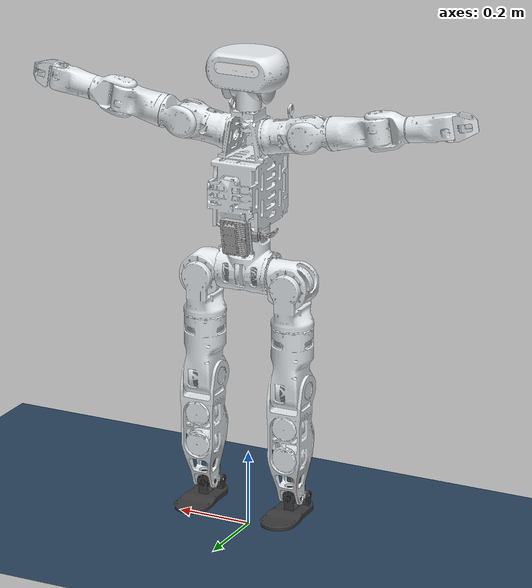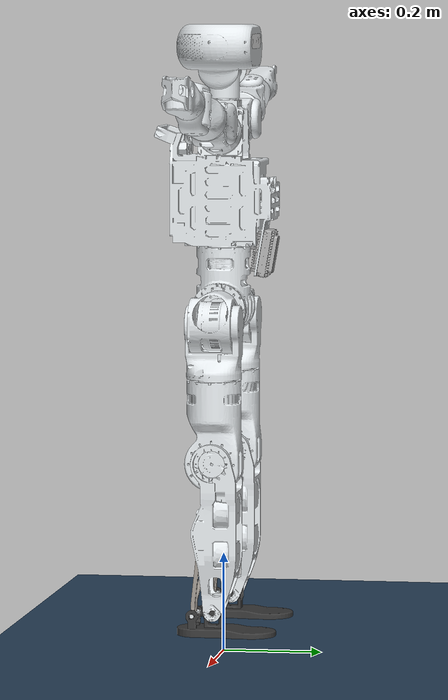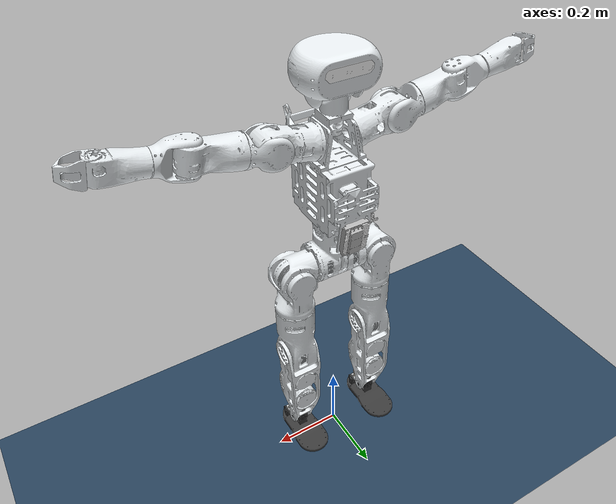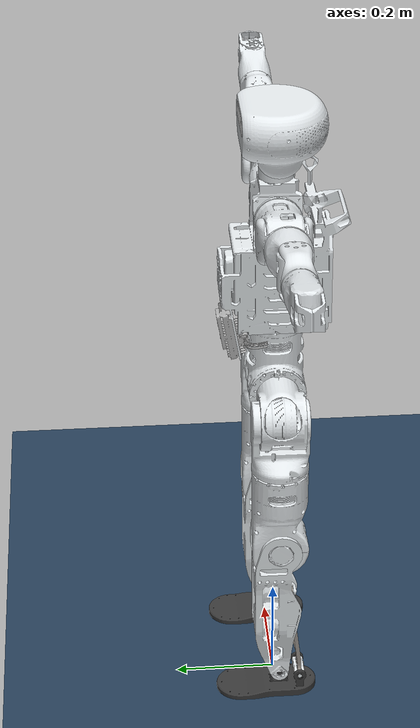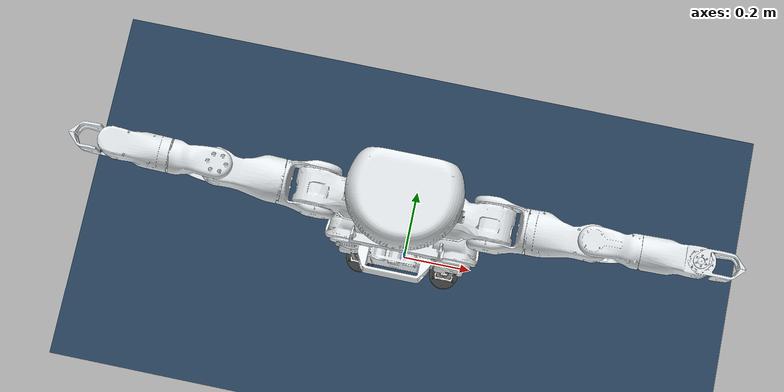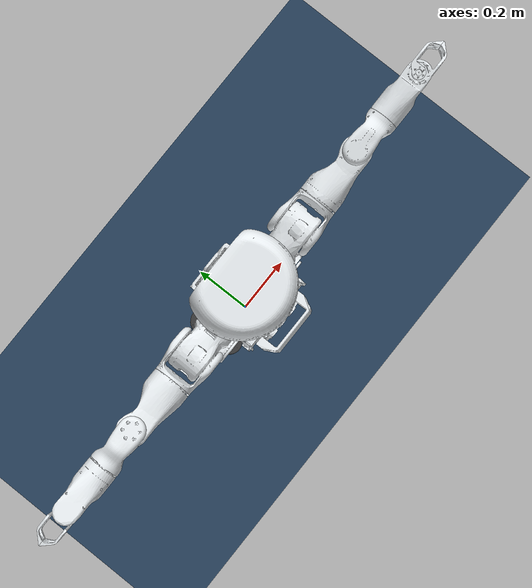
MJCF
<mujoco model="Khan_mini">
  <compiler angle="radian" meshdir="./meshes" />

  <asset>
    <mesh name="base_link" file="base_link.STL" />
    <mesh name="Left_hip_pitch_Link" file="Left_hip_pitch_Link.STL" />
    <mesh name="Left_hip_roll_Link" file="Left_hip_roll_Link.STL" />
    <mesh name="Left_hip_yaw_Link" file="Left_hip_yaw_Link.STL" />
    <mesh name="Left_knee_Link" file="Left_knee_Link.STL" />
    <mesh name="Left_ankle_pitch_Link" file="Left_ankle_pitch_Link.STL" />
    <mesh name="Left_ankle_roll_Link" file="Left_ankle_roll_Link.STL" />
    <mesh name="left_ankle_base_Link" file="left_ankle_base_Link.STL" />
    <mesh name="left_link1_down_Link" file="left_link1_down_Link.STL" />
    <mesh name="Left_link2_down_Link" file="Left_link2_down_Link.STL" />
    <mesh name="Left_drive1_Link" file="Left_drive1_Link.STL" />
    <mesh name="Left_link1_up_Link" file="Left_link1_up_Link.STL" />
    <mesh name="Left_drive2_Link" file="Left_drive2_Link.STL" />
    <mesh name="Left_link2_up_Link" file="Left_link2_up_Link.STL" />
    <mesh name="Right_hip_pitch_Link" file="Right_hip_pitch_Link.STL" />
    <mesh name="Right_hip_roll_Link" file="Right_hip_roll_Link.STL" />
    <mesh name="Right_hip_yaw_Link" file="Right_hip_yaw_Link.STL" />
    <mesh name="Right_knee_Link" file="Right_knee_Link.STL" />
    <mesh name="Right_ankle_pitch_Link" file="Right_ankle_pitch_Link.STL" />
    <mesh name="Right_ankle_roll_Link" file="Right_ankle_roll_Link.STL" />
    <mesh name="Right_ankle_base_Link" file="Right_ankle_base_Link.STL" />
    <mesh name="Right_link1_down_Link" file="Right_link1_down_Link.STL" />
    <mesh name="Right_link2_down_Link" file="Right_link2_down_Link.STL" />
    <mesh name="Right_drive1_Link" file="Right_drive1_Link.STL" />
    <mesh name="Right_link1_up_Link" file="Right_link1_up_Link.STL" />
    <mesh name="Right_drive2_Link" file="Right_drive2_Link.STL" />
    <mesh name="Right_link2_up_Link" file="Right_link2_up_Link.STL" />
    <mesh name="waist_yaw_Link" file="waist_yaw_Link.STL" />
    <mesh name="IMU_Link" file="IMU_Link.STL" />
    <mesh name="E1R_Link" file="E1R_Link.STL" />
    <mesh name="Left_shoulder_pitch_Link" file="Left_shoulder_pitch_Link.STL" />
    <mesh name="Left_shoulder_roll_Link" file="Left_shoulder_roll_Link.STL" />
    <mesh name="Left_shoulder_yaw_Link" file="Left_shoulder_yaw_Link.STL" />
    <mesh name="Left_elbow_Link" file="Left_elbow_Link.STL" />
    <mesh name="Left_wrist_roll_Link" file="Left_wrist_roll_Link.STL" />
    <mesh name="Left_wrist_yaw_Link" file="Left_wrist_yaw_Link.STL" />
    <mesh name="Right_shoulder_pitch_Link" file="Right_shoulder_pitch_Link.STL" />
    <mesh name="Right_shoulder_roll_Link" file="Right_shoulder_roll_Link.STL" />
    <mesh name="Right_shoulder_yaw_Link" file="Right_shoulder_yaw_Link.STL" />
    <mesh name="Right_elbow_Link" file="Right_elbow_Link.STL" />
    <mesh name="Right_wrist_roll_Link" file="Right_wrist_roll_Link.STL" />
    <mesh name="Right_wrist_yaw__Link" file="Right_wrist_yaw__Link.STL" />
    <mesh name="Neck_yaw_Link" file="Neck_yaw_Link.STL" />
    <mesh name="Neck_pitch_Link" file="Neck_pitch_Link.STL" />
    <mesh name="Camera_Link" file="Camera_Link.STL" />
  </asset>

  <default>
    <joint damping="0.01" armature="0.01" frictionloss="0.1" />
  </default>

  <worldbody>
    <site name="world" />
    <body name="base_link" pos="0 0 0.7" euler="0 0 1.57">
      <inertial pos="-4.221e-05 -1.5202e-05 0.03039" quat="0.706217 0.00357804 0.00350302 0.707978" mass="4.0179" diaginertia="0.00595011 0.00508393 0.00475947" />
      <joint name="base_to_world_joint" type="free" />
      <geom type="mesh" rgba="0.89804 0.91765 0.92941 1" contype="0" conaffinity="0" mesh="base_link" />
      <body name="Left_hip_pitch_Link" pos="0 0.12485 0">
        <inertial pos="0.0019439 -0.0030968 -0.023644" quat="0.969923 0.242989 -0.00988392 -0.0103728" mass="1.4636" diaginertia="0.00220231 0.00166132 0.00138447" />
        <joint name="Left_hip_pitch_joint" pos="0 0 0" axis="0 1 0" armature="0.03" range="-1.9198 1.2217" actuatorfrcrange="-120 120" />
        <geom type="mesh" rgba="0.89804 0.91765 0.92941 1" mesh="Left_hip_pitch_Link" />
        <body name="Left_hip_roll_Link" pos="0 0 -0.025">
          <inertial pos="0.0080102 4.5979e-06 -0.061622" quat="0.989628 -1.06913e-05 0.143652 -0.000118939" mass="0.61135" diaginertia="0.0014548 0.001306 0.000724982" />
          <joint name="Left_hip_roll_joint" pos="0 0 0" axis="1 0 0" armature="0.03" range="-0.5236 2.3562" actuatorfrcrange="-120 120" />
          <geom type="mesh" rgba="0.89804 0.91765 0.92941 1" mesh="Left_hip_roll_Link" />
          <body name="Left_hip_yaw_Link">
            <inertial pos="0.001015 -0.0008594 -0.21192" quat="0.696349 -0.0667912 -0.0169266 0.714388" mass="2.9008" diaginertia="0.00529103 0.00433145 0.00330872" />
            <joint name="Left_hip_yaw_joint" pos="0 0 0" axis="0 0 1" armature="0.03" range="-2.0071 3.5779" actuatorfrcrange="-120 120" />
            <geom type="mesh" rgba="0.89804 0.91765 0.92941 1" mesh="Left_hip_yaw_Link" />
            <body name="Left_knee_Link" pos="0 0 -0.27505">
              <inertial pos="0.014349 -0.00042715 -0.13961" quat="0.998274 0.0583238 0.00295361 -0.00622015" mass="3.0607" diaginertia="0.00897844 0.0079926 0.00218156" />
              <joint name="Left_knee_joint" pos="0 0 0" axis="0 1 0" armature="0.03" range="-0.349 2.2689" actuatorfrcrange="-120 120" />
              <geom type="mesh" rgba="0.89804 0.91765 0.92941 1" contype="0" conaffinity="0" mesh="Left_knee_Link" />
              <body name="Left_ankle_pitch_Link" pos="0 0 -0.3">
                <inertial pos="-1.0021e-07 4.6371e-09 0.0002973" quat="0.499994 0.499998 -0.500002 0.500006" mass="0.034237" diaginertia="7.1072e-06 6.0899e-06 2.0815e-06" />
                <joint name="Left_ankle_pitch_joint" pos="0 0 0" axis="0 -1 0" range="-0.5236 0.6108" actuatorfrcrange="-96 96" />
                <geom type="mesh" rgba="0.22353 0.22353 0.22353 1" contype="0" conaffinity="0" mesh="Left_ankle_pitch_Link" />
                <body name="Left_ankle_roll_Link">
                  <inertial pos="0.013731 3.6954e-11 -0.034295" quat="0 0.712239 0 0.701937" mass="0.48502" diaginertia="0.00127001 0.0010371 0.000263306" />
                  <joint name="Left_ankle_roll_joint" pos="0 0 0" axis="1 0 0" range="-0.349 0.349" actuatorfrcrange="-96 96" />
                  <geom type="mesh" rgba="0.22353 0.22353 0.22353 1" mesh="Left_ankle_roll_Link" />
                  <body name="left_ankle_base_Link" pos="-0.04055 0 -0.0075" quat="-0.499829 -0.499823 0.500177 -0.500171">
                    <inertial pos="-1.2766e-09 0.0002215 9.394e-08" quat="1 0 0 -5.79702e-06" mass="0.021442" diaginertia="7.4315e-06 6.7356e-06 1.2511e-06" />
                    <geom type="mesh" contype="0" conaffinity="0" rgba="0.89804 0.91765 0.92941 1" mesh="left_ankle_base_Link" />
                    <body name="Left_link1_down_Link" pos="0 -0.0001 -0.0115" quat="0.70633 0.706332 -0.0331127 -0.0331126">
                      <inertial pos="7.37779e-05 0 0.000785156" quat="0.862686 0.0236071 0.0404425 0.503568" mass="0.0113257" diaginertia="3.7349e-07 3.73483e-07 1.75504e-07" />
                      <geom type="mesh" contype="0" conaffinity="0" rgba="0.776471 0.756863 0.737255 1" mesh="left_link1_down_Link" />
                    </body>
                    <body name="Left_link2_down_Link" pos="0 0 0.0115" quat="0.704966 0.704968 -0.0549681 -0.0549679">
                      <inertial pos="0.000130862 0 0.000834053" quat="0.778283 0.0485833 0.0606845 0.623084" mass="0.0113257" diaginertia="3.7349e-07 3.73482e-07 1.75504e-07" />
                      <geom type="mesh" contype="0" conaffinity="0" rgba="0.776471 0.756863 0.737255 1" mesh="Left_link2_down_Link" />
                    </body>
                  </body>
                </body>
              </body>
              <body name="Left_drive1_Link" pos="-0.009 0 -0.1" quat="0.707107 0.000458321 -0.707107 -0.000458321">
                <inertial pos="-4.1877e-10 0.012079 0.0076368" quat="0.456208 0.542007 -0.546234 0.446912" mass="0.043855" diaginertia="9.28547e-06 7.27174e-06 4.33909e-06" />
                <joint name="Left_drive1_joint" pos="0 0 0" axis="0 0 1" armature="0.025" range="-1.5707 1.5707" actuatorfrcrange="-96 96" />
                <geom type="mesh" contype="0" conaffinity="0" rgba="0.89804 0.91765 0.92941 1" mesh="Left_drive1_Link" />
                <body name="Left_link1_up_Link" pos="0 0.027 0.0121" quat="0.0464719 0 -0.99892 0">
                  <inertial pos="0.104239 -0.00788909 -0.000259983" quat="0.0239727 0.711985 -0.0294001 0.70117" mass="0.11672" diaginertia="0.000504632 0.000503725 2.25208e-06" />
                  <joint name="Left_link1_up_joint" type="ball" pos="0 0 0" actuatorfrclimited="false" />
                  <geom type="mesh" contype="0" conaffinity="0" rgba="0.647059 0.619608 0.588235 1" mesh="Left_link1_up_Link" />
                  <body name="Left_link1_down_Link2" pos="0.2084 -0.0158 0.0" euler="0 0 3.14">
                    <inertial pos="0.000130862 0 0.000834053" quat="0.778283 0.0485833 0.0606845 0.623084" mass="0.0113257" diaginertia="3.7349e-07 3.73482e-07 1.75504e-07" />
                    <joint name="Left_link1_down_joint" type="ball" pos="0 0 0" actuatorfrclimited="false" />
                    <geom type="mesh" contype="0" conaffinity="0" rgba="0.776471 0.756863 0.737255 1" mesh="left_link1_down_Link" />
                  </body>
                </body>
              </body>
              <body name="Left_drive2_Link" pos="-0.009 0 -0.183" quat="0.000703211 0.707106 -0.000708405 -0.707106">
                <inertial pos="-4.1153e-10 0.012079 0.0076368" quat="0.456211 0.542013 -0.546229 0.446909" mass="0.043855" diaginertia="9.28547e-06 7.27174e-06 4.33909e-06" />
                <joint name="Left_drive2_joint" pos="0 0 0" axis="0 0 1" armature="0.025" range="-1.5707 1.5707" actuatorfrcrange="-96 96" />
                <geom type="mesh" contype="0" conaffinity="0" rgba="0.89804 0.91765 0.92941 1" mesh="Left_drive2_Link" />
                <body name="Left_link2_up_Link" pos="0 0.027 0.0121" quat="0.997001 0 -0.0773949 0">
                  <inertial pos="0.0629355 -0.00785448 0.000419095" quat="0.0514525 0.692974 -0.0361034 0.718218" mass="0.0753458" diaginertia="0.000128179 0.000127672 1.70681e-06" />
                  <joint name="Left_link2_up_joint" type="ball" pos="0 0 0" actuatorfrclimited="false" />
                  <geom type="mesh" contype="0" conaffinity="0" rgba="0.647059 0.619608 0.588235 1" mesh="Left_link2_up_Link" />
                  <body name="Left_link2_down_Link2" pos="0.1261 -0.0155 0.0" euler="0 3.14 0">
                    <inertial pos="7.37779e-05 0 0.000785156" quat="0.862686 0.0236071 0.0404425 0.503568" mass="0.0113257" diaginertia="3.7349e-07 3.73483e-07 1.75504e-07" />
                    <joint name="Left_link2_down_joint" type="ball" pos="0 0 0" actuatorfrclimited="false" />
                    <geom type="mesh" contype="0" conaffinity="0" rgba="0.776471 0.756863 0.737255 1" mesh="Left_link2_down_Link" />
                  </body>
                </body>
              </body>
            </body>
          </body>
        </body>
      </body>
      <body name="Right_hip_pitch_Link" pos="0 -0.12485 0">
        <inertial pos="0.0019441 0.0030968 -0.023646" quat="0.969918 -0.243009 -0.00987507 0.0103815" mass="1.4636" diaginertia="0.00220221 0.00166134 0.00138446" />
        <joint name="Right_hip_pitch_joint" pos="0 0 0" axis="0 1 0" armature="0.03" range="-1.9198 1.2217" actuatorfrcrange="-120 120" />
        <geom type="mesh" rgba="0.89804 0.91765 0.92941 1" mesh="Right_hip_pitch_Link" />
        <body name="Right_hip_roll_Link" pos="0 0 -0.025">
          <inertial pos="0.0080102 4.5982e-06 -0.061622" quat="0.989628 -1.06914e-05 0.143652 -0.000118944" mass="0.61135" diaginertia="0.0014548 0.001306 0.000724982" />
          <joint name="Right_hip_roll_joint" pos="0 0 0" axis="-1 0 0" armature="0.03" range="-0.5236 2.3562" actuatorfrcrange="-120 120" />
          <geom type="mesh" rgba="0.89804 0.91765 0.92941 1" mesh="Right_hip_roll_Link" />
          <body name="Right_hip_yaw_Link">
            <inertial pos="0.001015 -0.0008594 -0.21192" quat="0.696349 -0.0667912 -0.0169266 0.714388" mass="2.9008" diaginertia="0.00529103 0.00433145 0.00330872" />
            <joint name="Right_hip_yaw_joint" pos="0 0 0" axis="0 0 -1" armature="0.03" range="-2.0071 3.5779" actuatorfrcrange="-120 120" />
            <geom type="mesh" rgba="0.89804 0.91765 0.92941 1" mesh="Right_hip_yaw_Link" />
            <body name="Right_knee_Link" pos="0 0 -0.27505">
              <inertial pos="0.014349 -0.00042715 -0.13961" quat="0.998274 0.0583238 0.00295361 -0.00622015" mass="3.0607" diaginertia="0.00897844 0.0079926 0.00218156" />
              <joint name="Right_knee_joint" pos="0 0 0" axis="0 1 0" armature="0.03" range="-0.349 2.2689" actuatorfrcrange="-120 120" />
              <geom type="mesh" rgba="0.89804 0.91765 0.92941 1" contype="0" conaffinity="0" mesh="Right_knee_Link" />
              <body name="Right_ankle_pitch_Link" pos="0 0 -0.3">
                <inertial pos="-1.0021e-07 4.6371e-09 0.0002973" quat="0.499994 0.499998 -0.500002 0.500006" mass="0.034237" diaginertia="7.1072e-06 6.0899e-06 2.0815e-06" />
                <joint name="Right_ankle_pitch_joint" pos="0 0 0" axis="0 -1 0" range="-0.5236 0.6108" actuatorfrcrange="-96 96" />
                <geom type="mesh" rgba="0.22353 0.22353 0.22353 1" contype="0" conaffinity="0" mesh="Right_ankle_pitch_Link" />
                <body name="Right_ankle_roll_Link">
                  <inertial pos="0.013731 8.4158e-11 -0.034295" quat="0 0.712239 0 0.701937" mass="0.48502" diaginertia="0.00127001 0.0010371 0.000263306" />
                  <joint name="Right_ankle_roll_joint" pos="0 0 0" axis="-1 0 0" range="-0.349 0.349" actuatorfrcrange="-96 96" />
                  <geom type="mesh" rgba="0.22353 0.22353 0.22353 1" mesh="Right_ankle_roll_Link" />
                  <body name="Right_ankle_base_Link" pos="-0.04055 0 -0.0075" quat="0.499825 0.499827 -0.500173 0.500175">
                    <inertial pos="-1.27658e-09 0.000221497 9.39398e-08" quat="1 0 0 -5.79713e-06" mass="0.0214424" diaginertia="7.43153e-06 6.73564e-06 1.25111e-06" />
                    <geom type="mesh" contype="0" conaffinity="0" rgba="0.898039 0.917647 0.929412 1" mesh="Right_ankle_base_Link" />
                    <body name="Right_link1_down_Link" pos="0 -0.0001 -0.0115" quat="0.70633 0.706332 -0.0331127 -0.0331126">
                      <inertial pos="7.37781e-05 4.3686e-10 0.000785155" quat="0.974332 -0.0103226 0.0456764 -0.220193" mass="0.0113257" diaginertia="3.73488e-07 3.73485e-07 1.75504e-07" />
                      <geom type="mesh" contype="0" conaffinity="0" rgba="0.776471 0.756863 0.737255 1" mesh="Right_link1_down_Link" />
                    </body>
                    <body name="Right_link2_down_Link" pos="0 -0.0001 0.0115" quat="0.707105 0.707108 -0.000255545 -0.000255544">
                      <inertial pos="5.74194e-07 -6.18724e-10 0.000788614" quat="0.674502 0.00430851 -0.00329248 0.738253" mass="0.0113257" diaginertia="3.73676e-07 3.73487e-07 1.75314e-07" />
                      <geom type="mesh" contype="0" conaffinity="0" rgba="0.776471 0.756863 0.737255 1" mesh="Right_link2_down_Link" />
                    </body>
                  </body>
                </body>
              </body>
              <body name="Right_drive1_Link" pos="-0.009 0 -0.1" euler="3.1416 -1.5708 0">
                <inertial pos="-4.22644e-10 0.0119407 0.00755986" quat="0.45618 0.542034 -0.546256 0.446882" mass="0.0434524" diaginertia="9.27966e-06 7.26865e-06 4.33597e-06" />
                <joint name="Right_drive1_joint" pos="0 0 0" axis="0 0 1" armature="0.025" range="-1.5707 1.5707" actuatorfrcrange="-96 96" />
                <geom type="mesh" contype="0" conaffinity="0" rgba="0.898039 0.917647 0.929412 1" mesh="Right_drive1_Link" />
                <body name="Right_link1_up_Link" pos="0 0.027 0.0121" euler="0 3.0485 -2.992">
                  <inertial pos="0.104239 -0.00788909 -0.000259984" quat="0.0239727 0.711985 -0.0294001 0.70117" mass="0.11672" diaginertia="0.000504632 0.000503725 2.25208e-06" />
                  <joint name="Right_link1_up_joint" type="ball" pos="0 0 0" actuatorfrclimited="false" />
                  <geom type="mesh" contype="0" conaffinity="0" rgba="0.647059 0.619608 0.588235 1" mesh="Right_link1_up_Link" />
                  <body name="Right_link1_down_Link2" pos="0.2084 -0.0158 0.0" euler="0.0 -0.1 3.0">
                    <inertial pos="7.37781e-05 4.3686e-10 0.000785155" quat="0.974332 -0.0103226 0.0456764 -0.220193" mass="0.0113257" diaginertia="3.73488e-07 3.73485e-07 1.75504e-07" />
                    <joint name="Right_link1_down_joint" type="ball" pos="0 0 0" actuatorfrclimited="false" />
                    <geom type="mesh" contype="0" conaffinity="0" rgba="0.776471 0.756863 0.737255 1" mesh="Right_link2_down_Link" />
                  </body>
                </body>
              </body>
              <body name="Right_drive2_Link" pos="-0.009 0 -0.183" euler="0 -1.5708 0">
                <inertial pos="-4.15143e-10 0.0119407 0.00755986" quat="0.456048 0.542101 -0.546374 0.44679" mass="0.0434524" diaginertia="9.28027e-06 7.26865e-06 4.33536e-06" />
                <joint name="Right_drive2_joint" pos="0 0 0" axis="0 0 1" armature="0.025" range="-1.5707 1.5707" actuatorfrcrange="-96 96" />
                <geom type="mesh" contype="0" conaffinity="0" rgba="0.898039 0.917647 0.929412 1" mesh="Right_drive2_Link" />
                <body name="Right_link2_up_Link" pos="0 0.027 0.0121" euler="0.008 0.155 -2.898">
                  <inertial pos="0.0629225 -0.00790744 0.000398664" quat="0.0241421 0.690803 -0.0646649 0.719741" mass="0.0753458" diaginertia="0.000128179 0.000127672 1.70681e-06" />
                  <joint name="Right_link2_up_joint" type="ball" pos="0 0 0" actuatorfrclimited="false" />
                  <geom type="mesh" contype="0" conaffinity="0" rgba="0.647059 0.619608 0.588235 1" mesh="Right_link2_up_Link" />
                  <body name="Right_link2_down_Link2" pos="0.1261 -0.0155 0.0" euler="0.0 -3.08 0.25">
                    <inertial pos="5.74194e-07 -6.18724e-10 0.000788614" quat="0.674502 0.00430851 -0.00329248 0.738253" mass="0.0113257" diaginertia="3.73676e-07 3.73487e-07 1.75314e-07" />
                    <joint name="Right_link2_down_joint" type="ball" pos="0 0 0" actuatorfrclimited="false" />
                    <geom type="mesh" contype="0" conaffinity="0" rgba="0.776471 0.756863 0.737255 1" mesh="Right_link1_down_Link" />
                  </body>
                </body>
              </body>
            </body>
          </body>
        </body>
      </body>
      <body name="waist_yaw_Link" pos="0 0 0.22385">
        <inertial pos="-0.000349812 0.00300369 0.024462" quat="0.775234 0.520055 -0.206205 -0.293316" mass="7.33705" diaginertia="0.0162451 0.0149768 0.0117619" />
        <joint name="waist_yaw_joint" pos="0 0 0" axis="0 0 1" armature="0.03" range="-2.0071 3.5779" actuatorfrcrange="-120 120" />
        <geom type="mesh" rgba="0.89804 0.91765 0.92941 1" mesh="waist_yaw_Link" />
        <geom pos="0.0502 0 -0.09" quat="1 0 0 0" type="mesh" rgba="1 1 1 1" mesh="IMU_Link" />
        <geom pos="0.1061 0 -0.114729" quat="0.704416 0.704416 0.0616284 -0.0616284" type="mesh" rgba="0.698039 0.698039 0.698039 1" mesh="E1R_Link" />
        <body name="Left_shoulder_pitch_Link" pos="0 0.16702 0.15333">
          <inertial pos="-0.00295725 -0.0462946 -0.00817711" quat="0.643666 0.763789 0.0321812 0.0358471" mass="2.47796" diaginertia="0.00224676 0.00176315 0.00170115" />
          <joint name="Left_shoulder_pitch_joint" pos="0 0 0" axis="0 0.984808 0.17365" armature="0.025" range="-1.5707 1.5707" actuatorfrcrange="-96 96" />
          <geom type="mesh" rgba="0.898039 0.917647 0.929412 1" mesh="Left_shoulder_pitch_Link" />
          <body name="Left_shoulder_roll_Link">
            <inertial pos="0.00180398 0.0226445 0.00399009" quat="0.633649 0.75498 -0.108673 -0.129165" mass="0.308589" diaginertia="0.000451064 0.000391763 0.000200802" />
            <joint name="Left_shoulder_roll_joint" pos="0 0 0" axis="1 0 0" armature="0.025" range="-1.9189 1.9189" actuatorfrcrange="-96 96" />
            <geom type="mesh" rgba="0.898039 0.917647 0.929412 1" mesh="Left_shoulder_roll_Link" />
            <body name="Left_shoulder_yaw_Link">
              <inertial pos="-0.000805237 0.136526 0.0255704" quat="0.438011 0.545949 -0.575039 0.423576" mass="1.35563" diaginertia="0.00123538 0.00105429 0.000677073" />
              <joint name="Left_shoulder_yaw_joint" pos="0 0 0" axis="0 0.984808 0.17365" range="-1.5707 1.5707" actuatorfrcrange="-36 36" />
              <geom type="mesh" rgba="0.898039 0.917647 0.929412 1" mesh="Left_shoulder_yaw_Link" />
              <body name="Left_elbow_Link" pos="0 0.18706 0.032984">
                <inertial pos="-2.89218e-06 0.0344661 0.00737001" quat="0.536038 0.461119 -0.461154 0.536069" mass="0.257659" diaginertia="0.000354482 0.000333888 0.000118167" />
                <joint name="Left_elbow_joint" pos="0 0 0" axis="0 0.17365 -0.984808" range="-0.8726 2.2689" actuatorfrcrange="-36 36" />
                <geom type="mesh" rgba="0.898039 0.917647 0.929412 1" mesh="Left_elbow_Link" />
                <body name="Left_wrist_roll_Link">
                  <inertial pos="-0.000591176 0.149995 0.0258031" quat="0.488111 0.51023 -0.522781 0.477612" mass="0.953634" diaginertia="0.000501378 0.000430218 0.000296089" />
                  <joint name="Left_wrist_roll_joint" pos="0 0 0" axis="0 0.984808 0.17365" range="-1.5707 1.5707" actuatorfrcrange="-8 8" />
                  <geom type="mesh" rgba="0.898039 0.917647 0.929412 1" mesh="Left_wrist_roll_Link" />
                  <body name="Left_wrist_yaw_Link" pos="0 0.18662 0.032906">
                    <inertial pos="0.0135383 0.0397407 0.000913094" quat="0.404398 0.905302 0.103095 -0.0791299" mass="0.0392162" diaginertia="3.84309e-05 3.17751e-05 1.25159e-05" />
                    <joint name="Left_wrist_yaw_joint" pos="0 0 0" axis="0 0.17365 -0.984808" range="0 1.5707" actuatorfrcrange="-8 8" />
                    <geom type="mesh" rgba="0.898039 0.917647 0.929412 1" mesh="Left_wrist_yaw_Link" />
                  </body>
                </body>
              </body>
            </body>
          </body>
        </body>
        <body name="Right_shoulder_pitch_Link" pos="0 -0.16702 0.15333">
          <inertial pos="-0.0029573 0.0462995 -0.00814978" quat="0.766513 0.640419 -0.0379202 -0.029718" mass="2.47795" diaginertia="0.00224675 0.00176313 0.00170114" />
          <joint name="Right_shoulder_pitch_joint" pos="0 0 0" axis="0 0.984808 -0.17365" armature="0.025" range="-1.5707 1.5707" actuatorfrcrange="-96 96" />
          <geom type="mesh" rgba="0.898039 0.917647 0.929412 1" mesh="Right_shoulder_pitch_Link" />
          <body name="Right_shoulder_roll_Link">
            <inertial pos="0.00180464 -0.0226445 0.00398831" quat="0.755031 0.633604 0.12926 0.10847" mass="0.308586" diaginertia="0.000450937 0.000391659 0.000200695" />
            <joint name="Right_shoulder_roll_joint" pos="0 0 0" axis="-1 0 0" armature="0.025" range="-1.9189 1.9189" actuatorfrcrange="-96 96" />
            <geom type="mesh" rgba="0.898039 0.917647 0.929412 1" mesh="Right_shoulder_roll_Link" />
            <body name="Right_shoulder_yaw_Link">
              <inertial pos="-0.000805073 -0.137038 0.022666" quat="0.516977 0.492749 -0.461633 0.526145" mass="1.35564" diaginertia="0.00123542 0.00105445 0.000677145" />
              <joint name="Right_shoulder_yaw_joint" pos="0 0 0" axis="0 0.984808 -0.17365" range="-1.5707 1.5707" actuatorfrcrange="-36 36" />
              <geom type="mesh" rgba="0.898039 0.917647 0.929412 1" mesh="Right_shoulder_yaw_Link" />
              <body name="Right_elbow_Link" pos="0 -0.18706 0.032984">
                <inertial pos="-1.43883e-06 -0.0349081 0.00485783" quat="0.608073 0.361097 -0.360987 0.607901" mass="0.257655" diaginertia="0.00035447 0.000333878 0.000118155" />
                <joint name="Right_elbow_joint" pos="0 0 0" axis="0 0.17365 0.984808" range="-0.8726 2.2689" actuatorfrcrange="-36 36" />
                <geom type="mesh" rgba="0.898039 0.917647 0.929412 1" mesh="Right_elbow_Link" />
                <body name="Right_wrist_roll_Link">
                  <inertial pos="-0.000591125 -0.149775 0.0270544" quat="0.561142 0.431898 -0.417717 0.569295" mass="0.953625" diaginertia="0.000501371 0.000430213 0.000296086" />
                  <joint name="Right_wrist_roll_joint" pos="0 0 0" axis="0 0.984808 -0.17365" range="-1.5707 1.5707" actuatorfrcrange="-8 8" />
                  <geom type="mesh" rgba="0.898039 0.917647 0.929412 1" mesh="Right_wrist_roll_Link" />
                  <body name="Right_wrist_yaw__Link" pos="0 -0.18662 0.032906">
                    <inertial pos="0.0135383 -0.0376562 0.0127341" quat="0.555458 0.821326 -0.0877878 0.0958305" mass="0.0392161" diaginertia="3.84308e-05 3.1775e-05 1.25159e-05" />
                    <joint name="Right_wrist_yaw_joint" pos="0 0 0" axis="0 0.17365 0.984808" range="0 1.5707" actuatorfrcrange="-8 8" />
                    <geom type="mesh" rgba="0.898039 0.917647 0.929412 1" mesh="Right_wrist_yaw__Link" />
                  </body>
                </body>
              </body>
            </body>
          </body>
        </body>
        <body name="Neck_yaw_Link" pos="0 0 0.26">
          <inertial pos="5.4414e-05 -0.0125166 -0.006612" quat="0.693007 0.147475 -0.165996 0.685885" mass="0.453938" diaginertia="0.000218388 0.000177857 0.000146173" />
          <joint name="Neck_yaw_joint" pos="0 0 0" axis="0 0 1" range="-1.5707 1.5707" actuatorfrcrange="-8 8" />
          <geom type="mesh" rgba="0.898039 0.917647 0.929412 1" mesh="Neck_yaw_Link" />
          <body name="Neck_pitch_Link">
            <inertial pos="0.0117025 -0.0119247 0.0306177" quat="0.515126 0.674935 -0.332561 0.4105" mass="0.479936" diaginertia="0.00207785 0.00171617 0.000716021" />
            <joint name="Neck_pitch_joint" pos="0 0 0" axis="0 1 0" range="-0.6108 0.6108" actuatorfrcrange="-8 8" />
            <geom type="mesh" rgba="0.898039 0.917647 0.929412 1" mesh="Neck_pitch_Link" />
            <geom pos="0.0665 0 0.055" quat="1 0 0 0" type="mesh" rgba="1 1 1 1" mesh="Camera_Link" />
          </body>
        </body>
      </body>
    </body>
  </worldbody>

  <equality>
    <weld name="base_fixed_cnstr" body1="world" body2="base_link" relpose="0 0 0.7 1 0 0 0" solimp="0.999 0.9999 0.001 0.5 2" solref="0.005 1" />
    <weld name="left_knee_cnstr1" body1="Left_link1_down_Link" body2="Left_link1_down_Link2" solimp="0.999 0.9999 0.001 0.5 2" solref="0.005 1" />
    <weld name="left_knee_cnstr2" body1="Left_link2_down_Link" body2="Left_link2_down_Link2" solimp="0.999 0.9999 0.001 0.5 2" solref="0.005 1" />
    <weld name="right_knee_cnstr1" body1="Right_link1_down_Link" body2="Right_link2_down_Link2" solimp="0.999 0.9999 0.001 0.5 2" solref="0.005 1" />
    <weld name="right_knee_cnstr2" body1="Right_link2_down_Link" body2="Right_link1_down_Link2" solimp="0.999 0.9999 0.001 0.5 2" solref="0.005 1" />
  </equality>

  <actuator>
    <motor name="Left_hip_pitch_motor" joint="Left_hip_pitch_joint" />
    <motor name="Left_hip_roll_motor" joint="Left_hip_roll_joint" />
    <motor name="Left_hip_yaw_motor" joint="Left_hip_yaw_joint" />
    <motor name="Left_knee_motor" joint="Left_knee_joint" />
    <motor name="Left_drive1_motor" joint="Left_drive1_joint" />
    <motor name="Left_drive2_motor" joint="Left_drive2_joint" />
    <motor name="Left_shoulder_pitch_motor" joint="Left_shoulder_pitch_joint" />
    <motor name="Left_shoulder_roll_motor" joint="Left_shoulder_roll_joint" />
    <motor name="Left_shoulder_yaw_motor" joint="Left_shoulder_yaw_joint" />
    <motor name="Left_elbow_motor" joint="Left_elbow_joint" />
    <motor name="Left_wrist_roll_motor" joint="Left_wrist_roll_joint" />
    <motor name="Left_wrist_yaw_motor" joint="Left_wrist_yaw_joint" />

    <motor name="Right_hip_pitch_motor" joint="Right_hip_pitch_joint" />
    <motor name="Right_hip_roll_motor" joint="Right_hip_roll_joint" />
    <motor name="Right_hip_yaw_motor" joint="Right_hip_yaw_joint" />
    <motor name="Right_knee_motor" joint="Right_knee_joint" />
    <motor name="Right_drive1_motor" joint="Right_drive1_joint" />
    <motor name="Right_drive2_motor" joint="Right_drive2_joint" />
    <motor name="Right_shoulder_pitch_motor" joint="Right_shoulder_pitch_joint" />
    <motor name="Right_shoulder_roll_motor" joint="Right_shoulder_roll_joint" />
    <motor name="Right_shoulder_yaw_motor" joint="Right_shoulder_yaw_joint" />
    <motor name="Right_elbow_motor" joint="Right_elbow_joint" />
    <motor name="Right_wrist_roll_motor" joint="Right_wrist_roll_joint" />
    <motor name="Right_wrist_yaw_motor" joint="Right_wrist_yaw_joint" />

    <motor name="waist_yaw_motor" joint="waist_yaw_joint" />
    <motor name="Neck_yaw_motor" joint="Neck_yaw_joint" />
    <motor name="Neck_pitch_motor" joint="Neck_pitch_joint" />
  </actuator>

  <sensor>
    <actuatorfrc name="Left_hip_pitch_tor" actuator="Left_hip_pitch_motor" />
    <actuatorfrc name="Left_hip_roll_tor" actuator="Left_hip_roll_motor" />
    <actuatorfrc name="Left_hip_yaw_tor" actuator="Left_hip_yaw_motor" />
    <actuatorfrc name="Left_knee_tor" actuator="Left_knee_motor" />
    <actuatorfrc name="Left_drive1_tor" actuator="Left_drive1_motor" />
    <actuatorfrc name="Left_drive2_tor" actuator="Left_drive2_motor" />

    <actuatorfrc name="Right_hip_pitch_tor" actuator="Right_hip_pitch_motor" />
    <actuatorfrc name="Right_hip_roll_tor" actuator="Right_hip_roll_motor" />
    <actuatorfrc name="Right_hip_yaw_tor" actuator="Right_hip_yaw_motor" />
    <actuatorfrc name="Right_knee_tor" actuator="Right_knee_motor" />
    <actuatorfrc name="Right_drive1_tor" actuator="Right_drive1_motor" />
    <actuatorfrc name="Right_drive2_tor" actuator="Right_drive2_motor" />
  </sensor>

  <statistic center="1.0 0.7 1.0" extent="0.8" />
  <visual>
    <headlight diffuse="0.6 0.6 0.6" ambient="0.1 0.1 0.1" specular="0.9 0.9 0.9" />
    <rgba haze="0.15 0.25 0.35 1" />
    <global azimuth="-140" elevation="-20" />
  </visual>
  <asset>
    <texture type="skybox" builtin="flat" rgb1="0 0 0" rgb2="0 0 0" width="512" height="3072" />
    <texture type="2d" name="groundplane" builtin="checker" mark="edge" rgb1="0.2 0.3 0.4" rgb2="0.1 0.2 0.3" markrgb="0.8 0.8 0.8" width="300" height="300" />
    <material name="groundplane" texture="groundplane" texuniform="true" texrepeat="5 5" reflectance="0.2" />
  </asset>
  <worldbody>
    <light pos="1 0 3.5" dir="0 0 -1" directional="true" />
    <geom name="floor" size="0 0 0.05" type="plane" material="groundplane" />
  </worldbody>

</mujoco>
